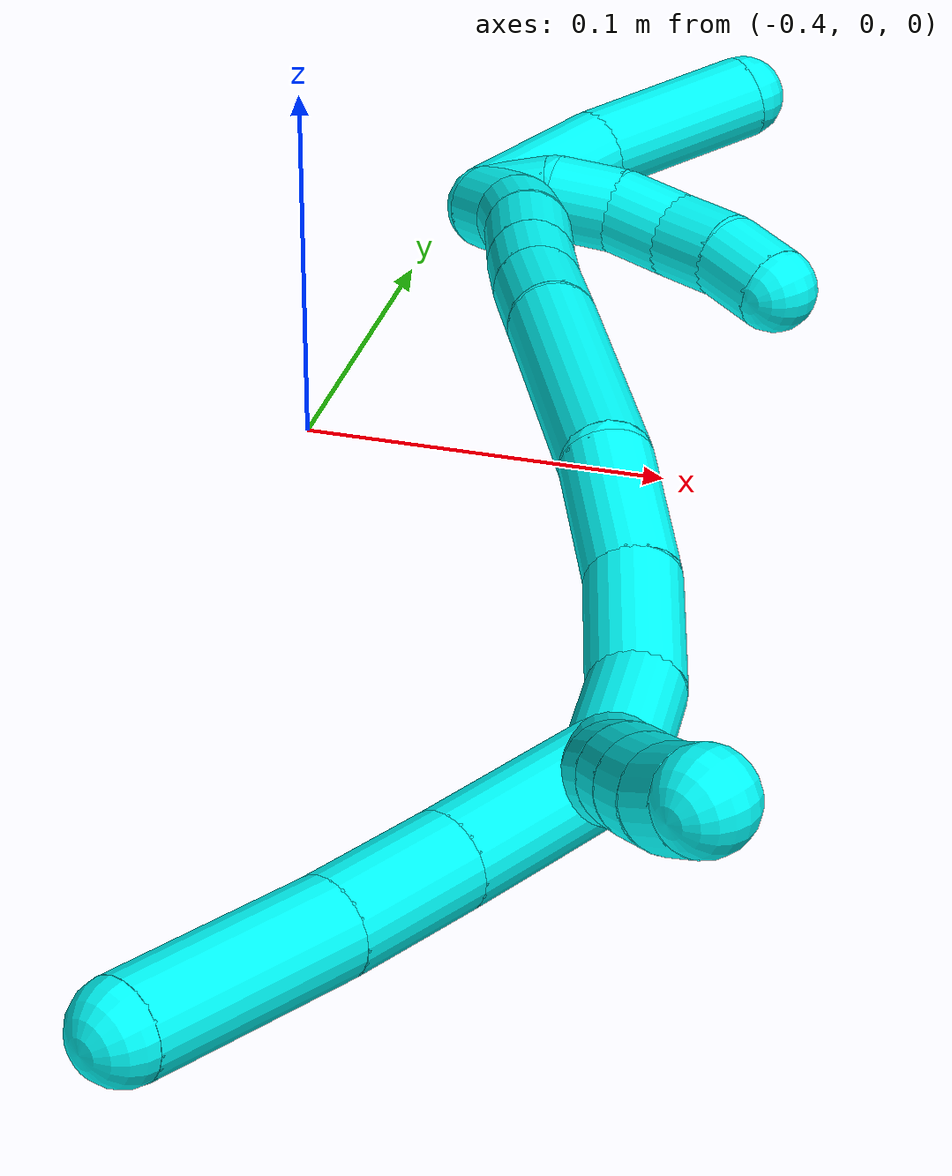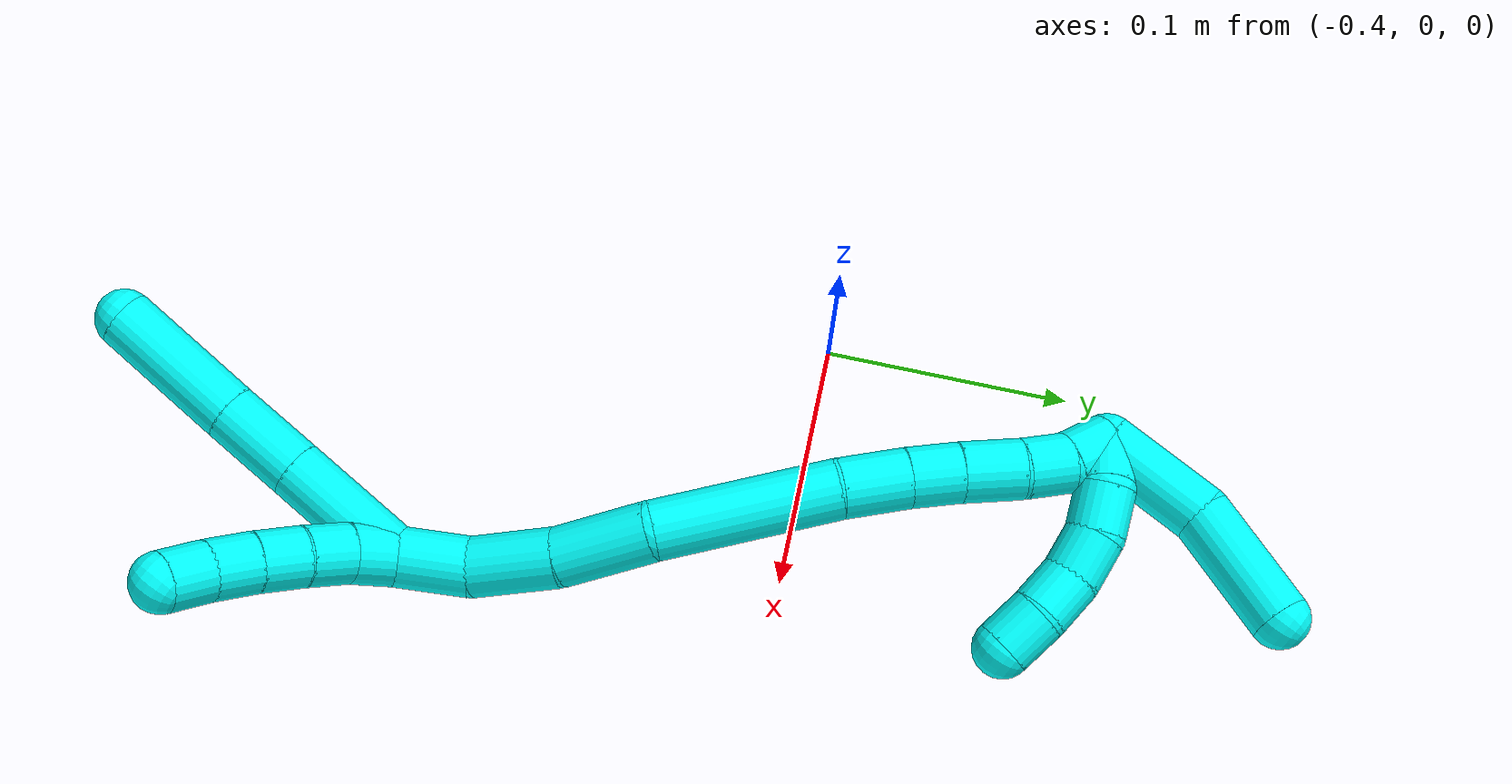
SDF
<sdf version="1.7">
 <world name="default">
  <model name="photoneo_s_sensor">
   <static>1</static>
   <pose>0 0 2 1.57079 1.57079 3.14159</pose>
   <link name="link">
    <inertial><mass>0.1</mass></inertial>
    <sensor name="sensor" type="depth">
     <update_rate>30</update_rate>
     <camera>
      <horizontal_fov>1.22</horizontal_fov>
      <image><width>1920</width><height>1200</height><format>B8G8R8</format></image>
      <clip><near>0.1</near><far>4</far></clip>
      <depth_camera><output>points</output></depth_camera>
     </camera>
     <plugin name="camera_plugin" filename="libgazebo_ros_depth_camera.so">
      <baseline>0.2</baseline>
      <alwaysOn>1</alwaysOn>
      <updateRate>0.0</updateRate>
      <cameraName>camera_ir</cameraName>
      <imageTopicName>/camera/color/image_raw</imageTopicName>
      <cameraInfoTopicName>/camera/color/camera_info</cameraInfoTopicName>
      <depthImageTopicName>/camera/depth/image_raw</depthImageTopicName>
      <depthImageCameraInfoTopicName>/camera/depth/camera_info</depthImageCameraInfoTopicName>
      <pointCloudTopicName>/camera/depth/points</pointCloudTopicName>
      <frameName>fr_optical</frameName>
      <pointCloudCutoff>0.1</pointCloudCutoff>
      <pointCloudCutoffMax>2.0</pointCloudCutoffMax>
      <distortionK1>0</distortionK1>
      <distortionK2>0</distortionK2>
      <distortionK3>0</distortionK3>
      <distortionT1>0</distortionT1>
      <distortionT2>0</distortionT2>
      <CxPrime>0</CxPrime>
      <Cx>0</Cx>
      <Cy>0</Cy>
      <focalLength>0</focalLength>
      <hackBaseline>0</hackBaseline>
     </plugin>
    </sensor>
   </link>
  </model>
  <model name="bin">
   <static>1</static>
   <link name="bottom">
    <collision name="collision-bottom">
     <pose>0 0 -0.01 0 -0 0</pose>
     <geometry><box><size>0.8 0.6 0.02</size></box></geometry>
     <surface>
      <friction><ode><mu>100</mu><mu2>100</mu2></ode></friction>
      <contact><collide_bitmask>65535</collide_bitmask></contact>
     </surface>
    </collision>
   </link>
   <link name="west_wall">
    <collision name="collision-west_wall">
     <pose>-0.41 0 0.1 0 -0 0</pose>
     <geometry><box><size>0.02 0.6 0.2</size></box></geometry>
     <surface>
      <friction><ode><mu>100</mu><mu2>100</mu2></ode></friction>
      <contact><collide_bitmask>65535</collide_bitmask></contact>
     </surface>
    </collision>
   </link>
   <link name="east_wall">
    <collision name="collision-east_wall">
     <pose>0.41 0 0.1 0 -0 0</pose>
     <geometry><box><size>0.02 0.6 0.2</size></box></geometry>
     <surface>
      <friction><ode><mu>100</mu><mu2>100</mu2></ode></friction>
      <contact><collide_bitmask>65535</collide_bitmask></contact>
     </surface>
    </collision>
   </link>
   <link name="south_wall">
    <collision name="collision-south_wall">
     <pose>0 -0.31 0.1 0 -0 0</pose>
     <geometry><box><size>0.8 0.02 0.2</size></box></geometry>
     <surface>
      <friction><ode><mu>100</mu><mu2>100</mu2></ode></friction>
      <contact><collide_bitmask>65535</collide_bitmask></contact>
     </surface>
    </collision>
   </link>
   <link name="north_wall">
    <collision name="collision-north_wall">
     <pose>0 0.31 0.1 0 -0 0</pose>
     <geometry><box><size>0.8 0.02 0.2</size></box></geometry>
     <surface>
      <friction><ode><mu>100</mu><mu2>100</mu2></ode></friction>
      <contact><collide_bitmask>65535</collide_bitmask></contact>
     </surface>
    </collision>
   </link>
  </model>
  <model name="3">
   <static>0</static>
   <link name="3">
    <collision name="collision-cylinder-e_1_2_8">
     <pose>-0.000572 0.00166 0.027177 -0.060996 -0.02101 0.000641</pose>
     <geometry><cylinder><radius>0.0125</radius><length>0.054467</length></cylinder></geometry>
     <surface>
      <friction><ode><mu>1.16</mu><mu2>1.16</mu2><slip1>0</slip1><slip2>0</slip2></ode></friction>
      <contact><ode><kp>1e+06</kp><kd>1</kd><max_vel>0</max_vel><min_depth>0.001</min_depth></ode></contact>
     </surface>
    </collision>
    <visual name="visual-cylinder-e_1_2_8">
     <pose>-0.000572 0.00166 0.027177 -0.060996 -0.02101 0.000641</pose>
     <geometry><cylinder><radius>0.0125</radius><length>0.054467</length></cylinder></geometry>
     <material><ambient>0.003922 1 0.996078 1</ambient></material>
    </visual>
    <collision name="collision-cylinder-e_2_8_9">
     <pose>-0.001109 0.004204 0.072543 -0.048595 0.001931 -4.7e-05</pose>
     <geometry><cylinder><radius>0.0125</radius><length>0.036422</length></cylinder></geometry>
     <surface>
      <friction><ode><mu>1.16</mu><mu2>1.16</mu2><slip1>0</slip1><slip2>0</slip2></ode></friction>
      <contact><ode><kp>1e+06</kp><kd>1</kd><max_vel>0</max_vel><min_depth>0.001</min_depth></ode></contact>
     </surface>
    </collision>
    <visual name="visual-cylinder-e_2_8_9">
     <pose>-0.001109 0.004204 0.072543 -0.048595 0.001931 -4.7e-05</pose>
     <geometry><cylinder><radius>0.0125</radius><length>0.036422</length></cylinder></geometry>
     <material><ambient>0.003922 1 0.996078 1</ambient></material>
    </visual>
    <collision name="collision-cylinder-e_3_9_6">
     <pose>0.0005 0.006293 0.120221 -0.040812 0.053266 -0.001087</pose>
     <geometry><cylinder><radius>0.0125</radius><length>0.059111</length></cylinder></geometry>
     <surface>
      <friction><ode><mu>1.16</mu><mu2>1.16</mu2><slip1>0</slip1><slip2>0</slip2></ode></friction>
      <contact><ode><kp>1e+06</kp><kd>1</kd><max_vel>0</max_vel><min_depth>0.001</min_depth></ode></contact>
     </surface>
    </collision>
    <visual name="visual-cylinder-e_3_9_6">
     <pose>0.0005 0.006293 0.120221 -0.040812 0.053266 -0.001087</pose>
     <geometry><cylinder><radius>0.0125</radius><length>0.059111</length></cylinder></geometry>
     <material><ambient>0.003922 1 0.996078 1</ambient></material>
    </visual>
    <collision name="collision-cylinder-e_1_2_10">
     <pose>0.002487 -0.006821 0.006877 0.781312 0.251306 0.103948</pose>
     <geometry><cylinder><radius>0.0125</radius><length>0.02</length></cylinder></geometry>
     <surface>
      <friction><ode><mu>1.16</mu><mu2>1.16</mu2><slip1>0</slip1><slip2>0</slip2></ode></friction>
      <contact><ode><kp>1e+06</kp><kd>1</kd><max_vel>0</max_vel><min_depth>0.001</min_depth></ode></contact>
     </surface>
    </collision>
    <visual name="visual-cylinder-e_1_2_10">
     <pose>0.002487 -0.006821 0.006877 0.781312 0.251306 0.103948</pose>
     <geometry><cylinder><radius>0.0125</radius><length>0.02</length></cylinder></geometry>
     <material><ambient>0.003922 1 0.996078 1</ambient></material>
    </visual>
    <collision name="collision-cylinder-e_2_10_11">
     <pose>0.007908 -0.021478 0.01923 0.960831 0.297831 0.156052</pose>
     <geometry><cylinder><radius>0.0125</radius><length>0.02</length></cylinder></geometry>
     <surface>
      <friction><ode><mu>1.16</mu><mu2>1.16</mu2><slip1>0</slip1><slip2>0</slip2></ode></friction>
      <contact><ode><kp>1e+06</kp><kd>1</kd><max_vel>0</max_vel><min_depth>0.001</min_depth></ode></contact>
     </surface>
    </collision>
    <visual name="visual-cylinder-e_2_10_11">
     <pose>0.007908 -0.021478 0.01923 0.960831 0.297831 0.156052</pose>
     <geometry><cylinder><radius>0.0125</radius><length>0.02</length></cylinder></geometry>
     <material><ambient>0.003922 1 0.996078 1</ambient></material>
    </visual>
    <collision name="collision-cylinder-e_3_11_12">
     <pose>0.012913 -0.037335 0.030307 0.9613 0.208593 0.109056</pose>
     <geometry><cylinder><radius>0.0125</radius><length>0.02</length></cylinder></geometry>
     <surface>
      <friction><ode><mu>1.16</mu><mu2>1.16</mu2><slip1>0</slip1><slip2>0</slip2></ode></friction>
      <contact><ode><kp>1e+06</kp><kd>1</kd><max_vel>0</max_vel><min_depth>0.001</min_depth></ode></contact>
     </surface>
    </collision>
    <visual name="visual-cylinder-e_3_11_12">
     <pose>0.012913 -0.037335 0.030307 0.9613 0.208593 0.109056</pose>
     <geometry><cylinder><radius>0.0125</radius><length>0.02</length></cylinder></geometry>
     <material><ambient>0.003922 1 0.996078 1</ambient></material>
    </visual>
    <collision name="collision-cylinder-e_4_12_13">
     <pose>0.016912 -0.05369 0.041088 1.0145 0.194045 0.108076</pose>
     <geometry><cylinder><radius>0.0125</radius><length>0.02</length></cylinder></geometry>
     <surface>
      <friction><ode><mu>1.16</mu><mu2>1.16</mu2><slip1>0</slip1><slip2>0</slip2></ode></friction>
      <contact><ode><kp>1e+06</kp><kd>1</kd><max_vel>0</max_vel><min_depth>0.001</min_depth></ode></contact>
     </surface>
    </collision>
    <visual name="visual-cylinder-e_4_12_13">
     <pose>0.016912 -0.05369 0.041088 1.0145 0.194045 0.108076</pose>
     <geometry><cylinder><radius>0.0125</radius><length>0.02</length></cylinder></geometry>
     <material><ambient>0.003922 1 0.996078 1</ambient></material>
    </visual>
    <collision name="collision-cylinder-e_5_13_5">
     <pose>0.021522 -0.070697 0.05046 1.12081 0.27149 0.170999</pose>
     <geometry><cylinder><radius>0.0125</radius><length>0.02</length></cylinder></geometry>
     <surface>
      <friction><ode><mu>1.16</mu><mu2>1.16</mu2><slip1>0</slip1><slip2>0</slip2></ode></friction>
      <contact><ode><kp>1e+06</kp><kd>1</kd><max_vel>0</max_vel><min_depth>0.001</min_depth></ode></contact>
     </surface>
    </collision>
    <visual name="visual-cylinder-e_5_13_5">
     <pose>0.021522 -0.070697 0.05046 1.12081 0.27149 0.170999</pose>
     <geometry><cylinder><radius>0.0125</radius><length>0.02</length></cylinder></geometry>
     <material><ambient>0.003922 1 0.996078 1</ambient></material>
    </visual>
    <collision name="collision-cylinder-e_1_2_14">
     <pose>0.002861 0.007283 -0.013592 -2.6497 0.183443 -0.702441</pose>
     <geometry><cylinder><radius>0.0125</radius><length>0.031366</length></cylinder></geometry>
     <surface>
      <friction><ode><mu>1.16</mu><mu2>1.16</mu2><slip1>0</slip1><slip2>0</slip2></ode></friction>
      <contact><ode><kp>1e+06</kp><kd>1</kd><max_vel>0</max_vel><min_depth>0.001</min_depth></ode></contact>
     </surface>
    </collision>
    <visual name="visual-cylinder-e_1_2_14">
     <pose>0.002861 0.007283 -0.013592 -2.6497 0.183443 -0.702441</pose>
     <geometry><cylinder><radius>0.0125</radius><length>0.031366</length></cylinder></geometry>
     <material><ambient>0.003922 1 0.996078 1</ambient></material>
    </visual>
    <collision name="collision-cylinder-e_2_14_15">
     <pose>0.014048 0.024333 -0.040356 -2.50355 0.469803 -1.25401</pose>
     <geometry><cylinder><radius>0.0125</radius><length>0.036783</length></cylinder></geometry>
     <surface>
      <friction><ode><mu>1.16</mu><mu2>1.16</mu2><slip1>0</slip1><slip2>0</slip2></ode></friction>
      <contact><ode><kp>1e+06</kp><kd>1</kd><max_vel>0</max_vel><min_depth>0.001</min_depth></ode></contact>
     </surface>
    </collision>
    <visual name="visual-cylinder-e_2_14_15">
     <pose>0.014048 0.024333 -0.040356 -2.50355 0.469803 -1.25401</pose>
     <geometry><cylinder><radius>0.0125</radius><length>0.036783</length></cylinder></geometry>
     <material><ambient>0.003922 1 0.996078 1</ambient></material>
    </visual>
    <collision name="collision-cylinder-e_3_15_16">
     <pose>0.032633 0.046415 -0.06556 -2.34456 0.537413 -1.15837</pose>
     <geometry><cylinder><radius>0.0125</radius><length>0.040081</length></cylinder></geometry>
     <surface>
      <friction><ode><mu>1.16</mu><mu2>1.16</mu2><slip1>0</slip1><slip2>0</slip2></ode></friction>
      <contact><ode><kp>1e+06</kp><kd>1</kd><max_vel>0</max_vel><min_depth>0.001</min_depth></ode></contact>
     </surface>
    </collision>
    <visual name="visual-cylinder-e_3_15_16">
     <pose>0.032633 0.046415 -0.06556 -2.34456 0.537413 -1.15837</pose>
     <geometry><cylinder><radius>0.0125</radius><length>0.040081</length></cylinder></geometry>
     <material><ambient>0.003922 1 0.996078 1</ambient></material>
    </visual>
    <collision name="collision-cylinder-e_4_16_17">
     <pose>0.052526 0.086733 -0.101352 -2.27443 0.256537 -0.543403</pose>
     <geometry><cylinder><radius>0.0125</radius><length>0.075937</length></cylinder></geometry>
     <surface>
      <friction><ode><mu>1.16</mu><mu2>1.16</mu2><slip1>0</slip1><slip2>0</slip2></ode></friction>
      <contact><ode><kp>1e+06</kp><kd>1</kd><max_vel>0</max_vel><min_depth>0.001</min_depth></ode></contact>
     </surface>
    </collision>
    <visual name="visual-cylinder-e_4_16_17">
     <pose>0.052526 0.086733 -0.101352 -2.27443 0.256537 -0.543403</pose>
     <geometry><cylinder><radius>0.0125</radius><length>0.075937</length></cylinder></geometry>
     <material><ambient>0.003922 1 0.996078 1</ambient></material>
    </visual>
    <collision name="collision-cylinder-e_5_17_18">
     <pose>0.063947 0.125219 -0.134287 -2.28964 0.127625 -0.279801</pose>
     <geometry><cylinder><radius>0.0125</radius><length>0.028088</length></cylinder></geometry>
     <surface>
      <friction><ode><mu>1.16</mu><mu2>1.16</mu2><slip1>0</slip1><slip2>0</slip2></ode></friction>
      <contact><ode><kp>1e+06</kp><kd>1</kd><max_vel>0</max_vel><min_depth>0.001</min_depth></ode></contact>
     </surface>
    </collision>
    <visual name="visual-cylinder-e_5_17_18">
     <pose>0.063947 0.125219 -0.134287 -2.28964 0.127625 -0.279801</pose>
     <geometry><cylinder><radius>0.0125</radius><length>0.028088</length></cylinder></geometry>
     <material><ambient>0.003922 1 0.996078 1</ambient></material>
    </visual>
    <collision name="collision-cylinder-e_6_18_19">
     <pose>0.067028 0.143416 -0.150966 -2.34254 0.119551 -0.281603</pose>
     <geometry><cylinder><radius>0.0125</radius><length>0.021682</length></cylinder></geometry>
     <surface>
      <friction><ode><mu>1.16</mu><mu2>1.16</mu2><slip1>0</slip1><slip2>0</slip2></ode></friction>
      <contact><ode><kp>1e+06</kp><kd>1</kd><max_vel>0</max_vel><min_depth>0.001</min_depth></ode></contact>
     </surface>
    </collision>
    <visual name="visual-cylinder-e_6_18_19">
     <pose>0.067028 0.143416 -0.150966 -2.34254 0.119551 -0.281603</pose>
     <geometry><cylinder><radius>0.0125</radius><length>0.021682</length></cylinder></geometry>
     <material><ambient>0.003922 1 0.996078 1</ambient></material>
    </visual>
    <collision name="collision-cylinder-e_7_19_20">
     <pose>0.069571 0.159894 -0.167714 -2.38273 0.097872 -0.244416</pose>
     <geometry><cylinder><radius>0.0125</radius><length>0.025595</length></cylinder></geometry>
     <surface>
      <friction><ode><mu>1.16</mu><mu2>1.16</mu2><slip1>0</slip1><slip2>0</slip2></ode></friction>
      <contact><ode><kp>1e+06</kp><kd>1</kd><max_vel>0</max_vel><min_depth>0.001</min_depth></ode></contact>
     </surface>
    </collision>
    <visual name="visual-cylinder-e_7_19_20">
     <pose>0.069571 0.159894 -0.167714 -2.38273 0.097872 -0.244416</pose>
     <geometry><cylinder><radius>0.0125</radius><length>0.025595</length></cylinder></geometry>
     <material><ambient>0.003922 1 0.996078 1</ambient></material>
    </visual>
    <collision name="collision-cylinder-e_8_20_21">
     <pose>0.071001 0.176354 -0.183399 -2.26781 0.01783 -0.038177</pose>
     <geometry><cylinder><radius>0.0125</radius><length>0.020077</length></cylinder></geometry>
     <surface>
      <friction><ode><mu>1.16</mu><mu2>1.16</mu2><slip1>0</slip1><slip2>0</slip2></ode></friction>
      <contact><ode><kp>1e+06</kp><kd>1</kd><max_vel>0</max_vel><min_depth>0.001</min_depth></ode></contact>
     </surface>
    </collision>
    <visual name="visual-cylinder-e_8_20_21">
     <pose>0.071001 0.176354 -0.183399 -2.26781 0.01783 -0.038177</pose>
     <geometry><cylinder><radius>0.0125</radius><length>0.020077</length></cylinder></geometry>
     <material><ambient>0.003922 1 0.996078 1</ambient></material>
    </visual>
    <collision name="collision-cylinder-e_9_21_1">
     <pose>0.071365 0.193458 -0.193765 -1.9659 0.018126 -0.027198</pose>
     <geometry><cylinder><radius>0.0125</radius><length>0.02039</length></cylinder></geometry>
     <surface>
      <friction><ode><mu>1.16</mu><mu2>1.16</mu2><slip1>0</slip1><slip2>0</slip2></ode></friction>
      <contact><ode><kp>1e+06</kp><kd>1</kd><max_vel>0</max_vel><min_depth>0.001</min_depth></ode></contact>
     </surface>
    </collision>
    <visual name="visual-cylinder-e_9_21_1">
     <pose>0.071365 0.193458 -0.193765 -1.9659 0.018126 -0.027198</pose>
     <geometry><cylinder><radius>0.0125</radius><length>0.02039</length></cylinder></geometry>
     <material><ambient>0.003922 1 0.996078 1</ambient></material>
    </visual>
    <collision name="collision-cylinder-e_1_1_22">
     <pose>0.073012 0.201872 -0.221418 3.09974 0.061498 1.94665</pose>
     <geometry><cylinder><radius>0.0125</radius><length>0.047589</length></cylinder></geometry>
     <surface>
      <friction><ode><mu>1.16</mu><mu2>1.16</mu2><slip1>0</slip1><slip2>0</slip2></ode></friction>
      <contact><ode><kp>1e+06</kp><kd>1</kd><max_vel>0</max_vel><min_depth>0.001</min_depth></ode></contact>
     </surface>
    </collision>
    <visual name="visual-cylinder-e_1_1_22">
     <pose>0.073012 0.201872 -0.221418 3.09974 0.061498 1.94665</pose>
     <geometry><cylinder><radius>0.0125</radius><length>0.047589</length></cylinder></geometry>
     <material><ambient>0.003922 1 0.996078 1</ambient></material>
    </visual>
    <collision name="collision-cylinder-e_2_22_4">
     <pose>0.075907 0.19139 -0.269532 2.77052 0.05469 0.289414</pose>
     <geometry><cylinder><radius>0.0125</radius><length>0.052411</length></cylinder></geometry>
     <surface>
      <friction><ode><mu>1.16</mu><mu2>1.16</mu2><slip1>0</slip1><slip2>0</slip2></ode></friction>
      <contact><ode><kp>1e+06</kp><kd>1</kd><max_vel>0</max_vel><min_depth>0.001</min_depth></ode></contact>
     </surface>
    </collision>
    <visual name="visual-cylinder-e_2_22_4">
     <pose>0.075907 0.19139 -0.269532 2.77052 0.05469 0.289414</pose>
     <geometry><cylinder><radius>0.0125</radius><length>0.052411</length></cylinder></geometry>
     <material><ambient>0.003922 1 0.996078 1</ambient></material>
    </visual>
    <collision name="collision-cylinder-e_1_1_23">
     <pose>0.071465 0.194328 -0.202895 2.11837 -0.008437 -0.015027</pose>
     <geometry><cylinder><radius>0.0125</radius><length>0.02</length></cylinder></geometry>
     <surface>
      <friction><ode><mu>1.16</mu><mu2>1.16</mu2><slip1>0</slip1><slip2>0</slip2></ode></friction>
      <contact><ode><kp>1e+06</kp><kd>1</kd><max_vel>0</max_vel><min_depth>0.001</min_depth></ode></contact>
     </surface>
    </collision>
    <visual name="visual-cylinder-e_1_1_23">
     <pose>0.071465 0.194328 -0.202895 2.11837 -0.008437 -0.015027</pose>
     <geometry><cylinder><radius>0.0125</radius><length>0.02</length></cylinder></geometry>
     <material><ambient>0.003922 1 0.996078 1</ambient></material>
    </visual>
    <collision name="collision-cylinder-e_2_23_24">
     <pose>0.068122 0.177272 -0.212201 2.01939 -0.331952 -0.520972</pose>
     <geometry><cylinder><radius>0.0125</radius><length>0.02</length></cylinder></geometry>
     <surface>
      <friction><ode><mu>1.16</mu><mu2>1.16</mu2><slip1>0</slip1><slip2>0</slip2></ode></friction>
      <contact><ode><kp>1e+06</kp><kd>1</kd><max_vel>0</max_vel><min_depth>0.001</min_depth></ode></contact>
     </surface>
    </collision>
    <visual name="visual-cylinder-e_2_23_24">
     <pose>0.068122 0.177272 -0.212201 2.01939 -0.331952 -0.520972</pose>
     <geometry><cylinder><radius>0.0125</radius><length>0.02</length></cylinder></geometry>
     <material><ambient>0.003922 1 0.996078 1</ambient></material>
    </visual>
    <collision name="collision-cylinder-e_3_24_25">
     <pose>0.06078 0.159729 -0.217671 1.7214 -0.420615 -0.48676</pose>
     <geometry><cylinder><radius>0.0125</radius><length>0.02</length></cylinder></geometry>
     <surface>
      <friction><ode><mu>1.16</mu><mu2>1.16</mu2><slip1>0</slip1><slip2>0</slip2></ode></friction>
      <contact><ode><kp>1e+06</kp><kd>1</kd><max_vel>0</max_vel><min_depth>0.001</min_depth></ode></contact>
     </surface>
    </collision>
    <visual name="visual-cylinder-e_3_24_25">
     <pose>0.06078 0.159729 -0.217671 1.7214 -0.420615 -0.48676</pose>
     <geometry><cylinder><radius>0.0125</radius><length>0.02</length></cylinder></geometry>
     <material><ambient>0.003922 1 0.996078 1</ambient></material>
    </visual>
    <collision name="collision-cylinder-e_4_25_26">
     <pose>0.053966 0.141104 -0.218408 1.505 -0.276563 -0.259143</pose>
     <geometry><cylinder><radius>0.0125</radius><length>0.02</length></cylinder></geometry>
     <surface>
      <friction><ode><mu>1.16</mu><mu2>1.16</mu2><slip1>0</slip1><slip2>0</slip2></ode></friction>
      <contact><ode><kp>1e+06</kp><kd>1</kd><max_vel>0</max_vel><min_depth>0.001</min_depth></ode></contact>
     </surface>
    </collision>
    <visual name="visual-cylinder-e_4_25_26">
     <pose>0.053966 0.141104 -0.218408 1.505 -0.276563 -0.259143</pose>
     <geometry><cylinder><radius>0.0125</radius><length>0.02</length></cylinder></geometry>
     <material><ambient>0.003922 1 0.996078 1</ambient></material>
    </visual>
    <collision name="collision-cylinder-e_5_26_3">
     <pose>0.047016 0.122572 -0.216229 1.39934 -0.435548 -0.3683</pose>
     <geometry><cylinder><radius>0.0125</radius><length>0.02</length></cylinder></geometry>
     <surface>
      <friction><ode><mu>1.16</mu><mu2>1.16</mu2><slip1>0</slip1><slip2>0</slip2></ode></friction>
      <contact><ode><kp>1e+06</kp><kd>1</kd><max_vel>0</max_vel><min_depth>0.001</min_depth></ode></contact>
     </surface>
    </collision>
    <visual name="visual-cylinder-e_5_26_3">
     <pose>0.047016 0.122572 -0.216229 1.39934 -0.435548 -0.3683</pose>
     <geometry><cylinder><radius>0.0125</radius><length>0.02</length></cylinder></geometry>
     <material><ambient>0.003922 1 0.996078 1</ambient></material>
    </visual>
    <collision name="collision-sphere-3">
     <pose>0.042797 0.113638 -0.214682 0 -0 0</pose>
     <geometry><sphere><radius>0.0125</radius></sphere></geometry>
     <surface>
      <friction><ode><mu>1.16</mu><mu2>1.16</mu2><slip1>0</slip1><slip2>0</slip2></ode></friction>
      <contact><ode><kp>1e+06</kp><kd>1</kd><max_vel>0</max_vel><min_depth>0.001</min_depth></ode></contact>
     </surface>
    </collision>
    <visual name="visual-sphere-3">
     <pose>0.042797 0.113638 -0.214682 0 -0 0</pose>
     <geometry><sphere><radius>0.0125</radius></sphere></geometry>
     <material><ambient>0.003922 1 0.996078 1</ambient></material>
    </visual>
    <collision name="collision-sphere-26">
     <pose>0.051235 0.131505 -0.217776 0 -0 0</pose>
     <geometry><sphere><radius>0.0125</radius></sphere></geometry>
     <surface>
      <friction><ode><mu>1.16</mu><mu2>1.16</mu2><slip1>0</slip1><slip2>0</slip2></ode></friction>
      <contact><ode><kp>1e+06</kp><kd>1</kd><max_vel>0</max_vel><min_depth>0.001</min_depth></ode></contact>
     </surface>
    </collision>
    <visual name="visual-sphere-26">
     <pose>0.051235 0.131505 -0.217776 0 -0 0</pose>
     <geometry><sphere><radius>0.0125</radius></sphere></geometry>
     <material><ambient>0.003922 1 0.996078 1</ambient></material>
    </visual>
    <collision name="collision-sphere-25">
     <pose>0.056696 0.150703 -0.21904 0 -0 0</pose>
     <geometry><sphere><radius>0.0125</radius></sphere></geometry>
     <surface>
      <friction><ode><mu>1.16</mu><mu2>1.16</mu2><slip1>0</slip1><slip2>0</slip2></ode></friction>
      <contact><ode><kp>1e+06</kp><kd>1</kd><max_vel>0</max_vel><min_depth>0.001</min_depth></ode></contact>
     </surface>
    </collision>
    <visual name="visual-sphere-25">
     <pose>0.056696 0.150703 -0.21904 0 -0 0</pose>
     <geometry><sphere><radius>0.0125</radius></sphere></geometry>
     <material><ambient>0.003922 1 0.996078 1</ambient></material>
    </visual>
    <collision name="collision-sphere-24">
     <pose>0.064863 0.168754 -0.216301 0 -0 0</pose>
     <geometry><sphere><radius>0.0125</radius></sphere></geometry>
     <surface>
      <friction><ode><mu>1.16</mu><mu2>1.16</mu2><slip1>0</slip1><slip2>0</slip2></ode></friction>
      <contact><ode><kp>1e+06</kp><kd>1</kd><max_vel>0</max_vel><min_depth>0.001</min_depth></ode></contact>
     </surface>
    </collision>
    <visual name="visual-sphere-24">
     <pose>0.064863 0.168754 -0.216301 0 -0 0</pose>
     <geometry><sphere><radius>0.0125</radius></sphere></geometry>
     <material><ambient>0.003922 1 0.996078 1</ambient></material>
    </visual>
    <collision name="collision-sphere-23">
     <pose>0.071381 0.185791 -0.208101 0 -0 0</pose>
     <geometry><sphere><radius>0.0125</radius></sphere></geometry>
     <surface>
      <friction><ode><mu>1.16</mu><mu2>1.16</mu2><slip1>0</slip1><slip2>0</slip2></ode></friction>
      <contact><ode><kp>1e+06</kp><kd>1</kd><max_vel>0</max_vel><min_depth>0.001</min_depth></ode></contact>
     </surface>
    </collision>
    <visual name="visual-sphere-23">
     <pose>0.071381 0.185791 -0.208101 0 -0 0</pose>
     <geometry><sphere><radius>0.0125</radius></sphere></geometry>
     <material><ambient>0.003922 1 0.996078 1</ambient></material>
    </visual>
    <collision name="collision-sphere-4">
     <pose>0.077339 0.181902 -0.293917 0 -0 0</pose>
     <geometry><sphere><radius>0.0125</radius></sphere></geometry>
     <surface>
      <friction><ode><mu>1.16</mu><mu2>1.16</mu2><slip1>0</slip1><slip2>0</slip2></ode></friction>
      <contact><ode><kp>1e+06</kp><kd>1</kd><max_vel>0</max_vel><min_depth>0.001</min_depth></ode></contact>
     </surface>
    </collision>
    <visual name="visual-sphere-4">
     <pose>0.077339 0.181902 -0.293917 0 -0 0</pose>
     <geometry><sphere><radius>0.0125</radius></sphere></geometry>
     <material><ambient>0.003922 1 0.996078 1</ambient></material>
    </visual>
    <collision name="collision-sphere-22">
     <pose>0.074474 0.200879 -0.245146 0 -0 0</pose>
     <geometry><sphere><radius>0.0125</radius></sphere></geometry>
     <surface>
      <friction><ode><mu>1.16</mu><mu2>1.16</mu2><slip1>0</slip1><slip2>0</slip2></ode></friction>
      <contact><ode><kp>1e+06</kp><kd>1</kd><max_vel>0</max_vel><min_depth>0.001</min_depth></ode></contact>
     </surface>
    </collision>
    <visual name="visual-sphere-22">
     <pose>0.074474 0.200879 -0.245146 0 -0 0</pose>
     <geometry><sphere><radius>0.0125</radius></sphere></geometry>
     <material><ambient>0.003922 1 0.996078 1</ambient></material>
    </visual>
    <collision name="collision-sphere-1">
     <pose>0.071549 0.202866 -0.197689 0 -0 0</pose>
     <geometry><sphere><radius>0.0125</radius></sphere></geometry>
     <surface>
      <friction><ode><mu>1.16</mu><mu2>1.16</mu2><slip1>0</slip1><slip2>0</slip2></ode></friction>
      <contact><ode><kp>1e+06</kp><kd>1</kd><max_vel>0</max_vel><min_depth>0.001</min_depth></ode></contact>
     </surface>
    </collision>
    <visual name="visual-sphere-1">
     <pose>0.071549 0.202866 -0.197689 0 -0 0</pose>
     <geometry><sphere><radius>0.0125</radius></sphere></geometry>
     <material><ambient>0.003922 1 0.996078 1</ambient></material>
    </visual>
    <collision name="collision-sphere-21">
     <pose>0.07118 0.18405 -0.189842 0 -0 0</pose>
     <geometry><sphere><radius>0.0125</radius></sphere></geometry>
     <surface>
      <friction><ode><mu>1.16</mu><mu2>1.16</mu2><slip1>0</slip1><slip2>0</slip2></ode></friction>
      <contact><ode><kp>1e+06</kp><kd>1</kd><max_vel>0</max_vel><min_depth>0.001</min_depth></ode></contact>
     </surface>
    </collision>
    <visual name="visual-sphere-21">
     <pose>0.07118 0.18405 -0.189842 0 -0 0</pose>
     <geometry><sphere><radius>0.0125</radius></sphere></geometry>
     <material><ambient>0.003922 1 0.996078 1</ambient></material>
    </visual>
    <collision name="collision-sphere-11">
     <pose>0.010842 -0.029313 0.024706 0 -0 0</pose>
     <geometry><sphere><radius>0.0125</radius></sphere></geometry>
     <surface>
      <friction><ode><mu>1.16</mu><mu2>1.16</mu2><slip1>0</slip1><slip2>0</slip2></ode></friction>
      <contact><ode><kp>1e+06</kp><kd>1</kd><max_vel>0</max_vel><min_depth>0.001</min_depth></ode></contact>
     </surface>
    </collision>
    <visual name="visual-sphere-11">
     <pose>0.010842 -0.029313 0.024706 0 -0 0</pose>
     <geometry><sphere><radius>0.0125</radius></sphere></geometry>
     <material><ambient>0.003922 1 0.996078 1</ambient></material>
    </visual>
    <collision name="collision-sphere-10">
     <pose>0.004973 -0.013642 0.013754 0 -0 0</pose>
     <geometry><sphere><radius>0.0125</radius></sphere></geometry>
     <surface>
      <friction><ode><mu>1.16</mu><mu2>1.16</mu2><slip1>0</slip1><slip2>0</slip2></ode></friction>
      <contact><ode><kp>1e+06</kp><kd>1</kd><max_vel>0</max_vel><min_depth>0.001</min_depth></ode></contact>
     </surface>
    </collision>
    <visual name="visual-sphere-10">
     <pose>0.004973 -0.013642 0.013754 0 -0 0</pose>
     <geometry><sphere><radius>0.0125</radius></sphere></geometry>
     <material><ambient>0.003922 1 0.996078 1</ambient></material>
    </visual>
    <collision name="collision-sphere-6">
     <pose>0.002073 0.007497 0.149711 0 -0 0</pose>
     <geometry><sphere><radius>0.0125</radius></sphere></geometry>
     <surface>
      <friction><ode><mu>1.16</mu><mu2>1.16</mu2><slip1>0</slip1><slip2>0</slip2></ode></friction>
      <contact><ode><kp>1e+06</kp><kd>1</kd><max_vel>0</max_vel><min_depth>0.001</min_depth></ode></contact>
     </surface>
    </collision>
    <visual name="visual-sphere-6">
     <pose>0.002073 0.007497 0.149711 0 -0 0</pose>
     <geometry><sphere><radius>0.0125</radius></sphere></geometry>
     <material><ambient>0.003922 1 0.996078 1</ambient></material>
    </visual>
    <collision name="collision-sphere-9">
     <pose>-0.001074 0.005089 0.090732 0 -0 0</pose>
     <geometry><sphere><radius>0.0125</radius></sphere></geometry>
     <surface>
      <friction><ode><mu>1.16</mu><mu2>1.16</mu2><slip1>0</slip1><slip2>0</slip2></ode></friction>
      <contact><ode><kp>1e+06</kp><kd>1</kd><max_vel>0</max_vel><min_depth>0.001</min_depth></ode></contact>
     </surface>
    </collision>
    <visual name="visual-sphere-9">
     <pose>-0.001074 0.005089 0.090732 0 -0 0</pose>
     <geometry><sphere><radius>0.0125</radius></sphere></geometry>
     <material><ambient>0.003922 1 0.996078 1</ambient></material>
    </visual>
    <collision name="collision-sphere-2">
     <geometry><sphere><radius>0.0125</radius></sphere></geometry>
     <surface>
      <friction><ode><mu>1.16</mu><mu2>1.16</mu2><slip1>0</slip1><slip2>0</slip2></ode></friction>
      <contact><ode><kp>1e+06</kp><kd>1</kd><max_vel>0</max_vel><min_depth>0.001</min_depth></ode></contact>
     </surface>
    </collision>
    <visual name="visual-sphere-2">
     <geometry><sphere><radius>0.0125</radius></sphere></geometry>
     <material><ambient>0.003922 1 0.996078 1</ambient></material>
    </visual>
    <collision name="collision-sphere-19">
     <pose>0.068321 0.151131 -0.158473 0 -0 0</pose>
     <geometry><sphere><radius>0.0125</radius></sphere></geometry>
     <surface>
      <friction><ode><mu>1.16</mu><mu2>1.16</mu2><slip1>0</slip1><slip2>0</slip2></ode></friction>
      <contact><ode><kp>1e+06</kp><kd>1</kd><max_vel>0</max_vel><min_depth>0.001</min_depth></ode></contact>
     </surface>
    </collision>
    <visual name="visual-sphere-19">
     <pose>0.068321 0.151131 -0.158473 0 -0 0</pose>
     <geometry><sphere><radius>0.0125</radius></sphere></geometry>
     <material><ambient>0.003922 1 0.996078 1</ambient></material>
    </visual>
    <collision name="collision-sphere-8">
     <pose>-0.001144 0.003319 0.054354 0 -0 0</pose>
     <geometry><sphere><radius>0.0125</radius></sphere></geometry>
     <surface>
      <friction><ode><mu>1.16</mu><mu2>1.16</mu2><slip1>0</slip1><slip2>0</slip2></ode></friction>
      <contact><ode><kp>1e+06</kp><kd>1</kd><max_vel>0</max_vel><min_depth>0.001</min_depth></ode></contact>
     </surface>
    </collision>
    <visual name="visual-sphere-8">
     <pose>-0.001144 0.003319 0.054354 0 -0 0</pose>
     <geometry><sphere><radius>0.0125</radius></sphere></geometry>
     <material><ambient>0.003922 1 0.996078 1</ambient></material>
    </visual>
    <collision name="collision-sphere-12">
     <pose>0.014984 -0.045357 0.035907 0 -0 0</pose>
     <geometry><sphere><radius>0.0125</radius></sphere></geometry>
     <surface>
      <friction><ode><mu>1.16</mu><mu2>1.16</mu2><slip1>0</slip1><slip2>0</slip2></ode></friction>
      <contact><ode><kp>1e+06</kp><kd>1</kd><max_vel>0</max_vel><min_depth>0.001</min_depth></ode></contact>
     </surface>
    </collision>
    <visual name="visual-sphere-12">
     <pose>0.014984 -0.045357 0.035907 0 -0 0</pose>
     <geometry><sphere><radius>0.0125</radius></sphere></geometry>
     <material><ambient>0.003922 1 0.996078 1</ambient></material>
    </visual>
    <collision name="collision-sphere-13">
     <pose>0.018841 -0.062022 0.04627 0 -0 0</pose>
     <geometry><sphere><radius>0.0125</radius></sphere></geometry>
     <surface>
      <friction><ode><mu>1.16</mu><mu2>1.16</mu2><slip1>0</slip1><slip2>0</slip2></ode></friction>
      <contact><ode><kp>1e+06</kp><kd>1</kd><max_vel>0</max_vel><min_depth>0.001</min_depth></ode></contact>
     </surface>
    </collision>
    <visual name="visual-sphere-13">
     <pose>0.018841 -0.062022 0.04627 0 -0 0</pose>
     <geometry><sphere><radius>0.0125</radius></sphere></geometry>
     <material><ambient>0.003922 1 0.996078 1</ambient></material>
    </visual>
    <collision name="collision-sphere-5">
     <pose>0.024204 -0.079372 0.05465 0 -0 0</pose>
     <geometry><sphere><radius>0.0125</radius></sphere></geometry>
     <surface>
      <friction><ode><mu>1.16</mu><mu2>1.16</mu2><slip1>0</slip1><slip2>0</slip2></ode></friction>
      <contact><ode><kp>1e+06</kp><kd>1</kd><max_vel>0</max_vel><min_depth>0.001</min_depth></ode></contact>
     </surface>
    </collision>
    <visual name="visual-sphere-5">
     <pose>0.024204 -0.079372 0.05465 0 -0 0</pose>
     <geometry><sphere><radius>0.0125</radius></sphere></geometry>
     <material><ambient>0.003922 1 0.996078 1</ambient></material>
    </visual>
    <collision name="collision-sphere-14">
     <pose>0.005722 0.014566 -0.027184 0 -0 0</pose>
     <geometry><sphere><radius>0.0125</radius></sphere></geometry>
     <surface>
      <friction><ode><mu>1.16</mu><mu2>1.16</mu2><slip1>0</slip1><slip2>0</slip2></ode></friction>
      <contact><ode><kp>1e+06</kp><kd>1</kd><max_vel>0</max_vel><min_depth>0.001</min_depth></ode></contact>
     </surface>
    </collision>
    <visual name="visual-sphere-14">
     <pose>0.005722 0.014566 -0.027184 0 -0 0</pose>
     <geometry><sphere><radius>0.0125</radius></sphere></geometry>
     <material><ambient>0.003922 1 0.996078 1</ambient></material>
    </visual>
    <collision name="collision-sphere-15">
     <pose>0.022374 0.034101 -0.053529 0 -0 0</pose>
     <geometry><sphere><radius>0.0125</radius></sphere></geometry>
     <surface>
      <friction><ode><mu>1.16</mu><mu2>1.16</mu2><slip1>0</slip1><slip2>0</slip2></ode></friction>
      <contact><ode><kp>1e+06</kp><kd>1</kd><max_vel>0</max_vel><min_depth>0.001</min_depth></ode></contact>
     </surface>
    </collision>
    <visual name="visual-sphere-15">
     <pose>0.022374 0.034101 -0.053529 0 -0 0</pose>
     <geometry><sphere><radius>0.0125</radius></sphere></geometry>
     <material><ambient>0.003922 1 0.996078 1</ambient></material>
    </visual>
    <collision name="collision-sphere-16">
     <pose>0.042892 0.058729 -0.077591 0 -0 0</pose>
     <geometry><sphere><radius>0.0125</radius></sphere></geometry>
     <surface>
      <friction><ode><mu>1.16</mu><mu2>1.16</mu2><slip1>0</slip1><slip2>0</slip2></ode></friction>
      <contact><ode><kp>1e+06</kp><kd>1</kd><max_vel>0</max_vel><min_depth>0.001</min_depth></ode></contact>
     </surface>
    </collision>
    <visual name="visual-sphere-16">
     <pose>0.042892 0.058729 -0.077591 0 -0 0</pose>
     <geometry><sphere><radius>0.0125</radius></sphere></geometry>
     <material><ambient>0.003922 1 0.996078 1</ambient></material>
    </visual>
    <collision name="collision-sphere-17">
     <pose>0.06216 0.114736 -0.125114 0 -0 0</pose>
     <geometry><sphere><radius>0.0125</radius></sphere></geometry>
     <surface>
      <friction><ode><mu>1.16</mu><mu2>1.16</mu2><slip1>0</slip1><slip2>0</slip2></ode></friction>
      <contact><ode><kp>1e+06</kp><kd>1</kd><max_vel>0</max_vel><min_depth>0.001</min_depth></ode></contact>
     </surface>
    </collision>
    <visual name="visual-sphere-17">
     <pose>0.06216 0.114736 -0.125114 0 -0 0</pose>
     <geometry><sphere><radius>0.0125</radius></sphere></geometry>
     <material><ambient>0.003922 1 0.996078 1</ambient></material>
    </visual>
    <collision name="collision-sphere-18">
     <pose>0.065735 0.135702 -0.14346 0 -0 0</pose>
     <geometry><sphere><radius>0.0125</radius></sphere></geometry>
     <surface>
      <friction><ode><mu>1.16</mu><mu2>1.16</mu2><slip1>0</slip1><slip2>0</slip2></ode></friction>
      <contact><ode><kp>1e+06</kp><kd>1</kd><max_vel>0</max_vel><min_depth>0.001</min_depth></ode></contact>
     </surface>
    </collision>
    <visual name="visual-sphere-18">
     <pose>0.065735 0.135702 -0.14346 0 -0 0</pose>
     <geometry><sphere><radius>0.0125</radius></sphere></geometry>
     <material><ambient>0.003922 1 0.996078 1</ambient></material>
    </visual>
    <collision name="collision-sphere-20">
     <pose>0.070822 0.168658 -0.176956 0 -0 0</pose>
     <geometry><sphere><radius>0.0125</radius></sphere></geometry>
     <surface>
      <friction><ode><mu>1.16</mu><mu2>1.16</mu2><slip1>0</slip1><slip2>0</slip2></ode></friction>
      <contact><ode><kp>1e+06</kp><kd>1</kd><max_vel>0</max_vel><min_depth>0.001</min_depth></ode></contact>
     </surface>
    </collision>
    <visual name="visual-sphere-20">
     <pose>0.070822 0.168658 -0.176956 0 -0 0</pose>
     <geometry><sphere><radius>0.0125</radius></sphere></geometry>
     <material><ambient>0.003922 1 0.996078 1</ambient></material>
    </visual>
    <inertial>
     <pose>0.037982 0.08017 -0.084039 0 -0 0</pose>
     <mass>0.75</mass>
     <inertia><ixx>9.7e-05</ixx><ixy>0</ixy><ixz>0</ixz><iyy>-1e-05</iyy><iyz>0</iyz><izz>-5.8e-05</izz></inertia>
    </inertial>
   </link>
   <pose>-0.275745 -0.153698 0.012584 -1.44935 -1.27129 2.56949</pose>
  </model>
 </world>
</sdf>
